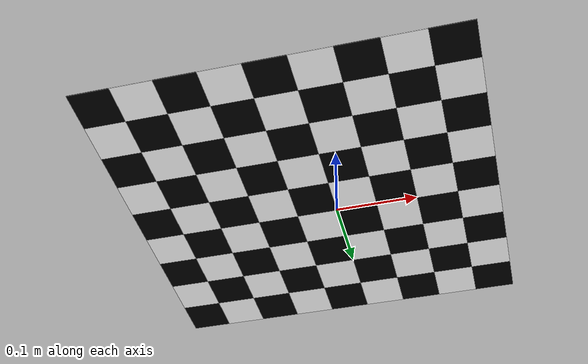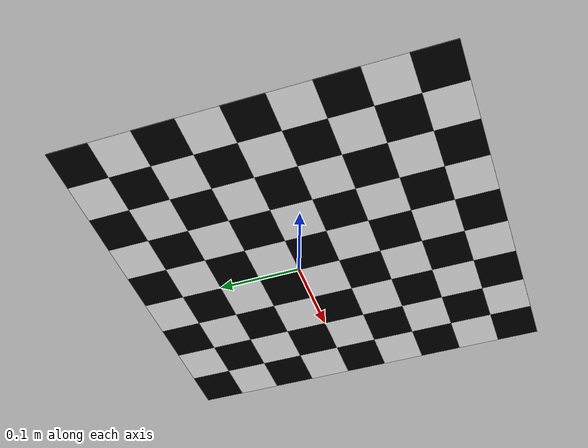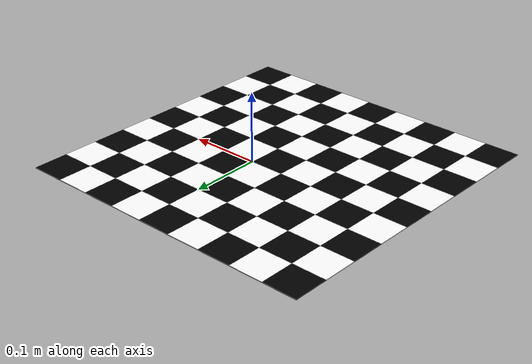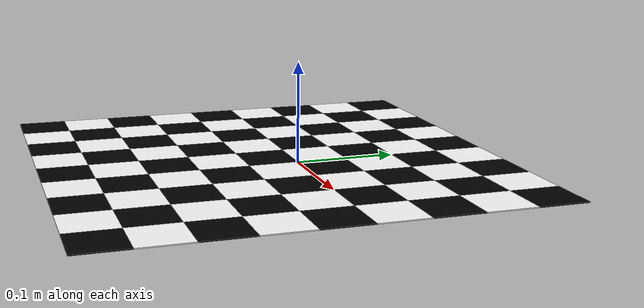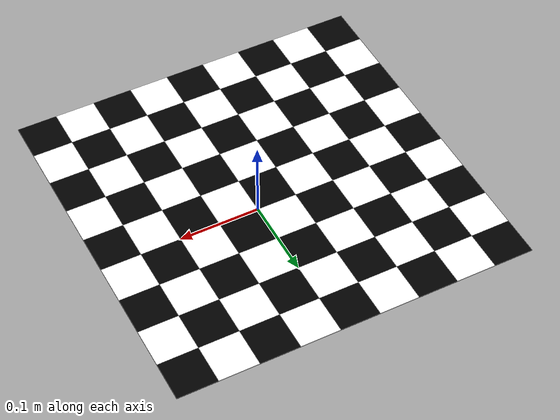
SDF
<?xml version='1.0'?>
<sdf version="1.4">
<model name="board5cm">
  <pose>0 0 0 0 0 0</pose>
  <static>false</static>
    <link name="checkerboard">
      <gravity>false</gravity>
      <kinematic>true</kinematic>
      <pose>-0.0 0.0 0.0 0.0 0.0 0.0</pose>
      <inertial>
        <mass>0.01</mass>
        <inertia> <!-- interias are tricky to compute -->
          <!-- http://answers.gazebosim.org/question/4372/the-inertia-matrix-explained/ -->
          <ixx>0.083</ixx>       <!-- for a box: ixx = 0.083 * mass * (y*y + z*z) -->
          <ixy>0.0</ixy>         <!-- for a box: ixy = 0 -->
          <ixz>0.0</ixz>         <!-- for a box: ixz = 0 -->
          <iyy>0.083</iyy>       <!-- for a box: iyy = 0.083 * mass * (x*x + z*z) -->
          <iyz>0.0</iyz>         <!-- for a box: iyz = 0 -->
          <izz>0.083</izz>       <!-- for a box: izz = 0.083 * mass * (x*x + y*y) -->
        </inertia>
      </inertial>
      <collision name="collision">
        <geometry>
          <box>
            <size>0.02 0.02 0.00001</size>
          </box>
        </geometry>
      </collision>

    <visual name="sqr11">
        <pose>-0.225 -0.225 0.0 0.0 0.0 0.0</pose>
        <geometry>
            <box>
            <size>0.05 0.05 0.001</size>
            </box>
        </geometry>
        <material>
            <ambient>0 0 0 1</ambient>
            <diffuse>0 0 0 1</diffuse>
            <specular>0.1 0.1 0.1 1</specular>
            <emissive>0 0 0 0</emissive>
        </material>
    </visual>

    <visual name="sqr12">
        <pose>-0.17500000000000002 -0.225 0.0 0.0 0.0 0.0</pose>
        <geometry>
            <box>
            <size>0.05 0.05 0.001</size>
            </box>
        </geometry>
        <material>
            <ambient>1 1 1 1</ambient>
            <diffuse>1 1 1 1</diffuse>
            <specular>0.1 0.1 0.1 1</specular>
            <emissive>0 0 0 0</emissive>
        </material>
    </visual>

    <visual name="sqr13">
        <pose>-0.125 -0.225 0.0 0.0 0.0 0.0</pose>
        <geometry>
            <box>
            <size>0.05 0.05 0.001</size>
            </box>
        </geometry>
        <material>
            <ambient>0 0 0 1</ambient>
            <diffuse>0 0 0 1</diffuse>
            <specular>0.1 0.1 0.1 1</specular>
            <emissive>0 0 0 0</emissive>
        </material>
    </visual>

    <visual name="sqr14">
        <pose>-0.07500000000000001 -0.225 0.0 0.0 0.0 0.0</pose>
        <geometry>
            <box>
            <size>0.05 0.05 0.001</size>
            </box>
        </geometry>
        <material>
            <ambient>1 1 1 1</ambient>
            <diffuse>1 1 1 1</diffuse>
            <specular>0.1 0.1 0.1 1</specular>
            <emissive>0 0 0 0</emissive>
        </material>
    </visual>

    <visual name="sqr15">
        <pose>-0.025 -0.225 0.0 0.0 0.0 0.0</pose>
        <geometry>
            <box>
            <size>0.05 0.05 0.001</size>
            </box>
        </geometry>
        <material>
            <ambient>0 0 0 1</ambient>
            <diffuse>0 0 0 1</diffuse>
            <specular>0.1 0.1 0.1 1</specular>
            <emissive>0 0 0 0</emissive>
        </material>
    </visual>

    <visual name="sqr16">
        <pose>0.025 -0.225 0.0 0.0 0.0 0.0</pose>
        <geometry>
            <box>
            <size>0.05 0.05 0.001</size>
            </box>
        </geometry>
        <material>
            <ambient>1 1 1 1</ambient>
            <diffuse>1 1 1 1</diffuse>
            <specular>0.1 0.1 0.1 1</specular>
            <emissive>0 0 0 0</emissive>
        </material>
    </visual>

    <visual name="sqr17">
        <pose>0.07500000000000001 -0.225 0.0 0.0 0.0 0.0</pose>
        <geometry>
            <box>
            <size>0.05 0.05 0.001</size>
            </box>
        </geometry>
        <material>
            <ambient>0 0 0 1</ambient>
            <diffuse>0 0 0 1</diffuse>
            <specular>0.1 0.1 0.1 1</specular>
            <emissive>0 0 0 0</emissive>
        </material>
    </visual>

    <visual name="sqr18">
        <pose>0.125 -0.225 0.0 0.0 0.0 0.0</pose>
        <geometry>
            <box>
            <size>0.05 0.05 0.001</size>
            </box>
        </geometry>
        <material>
            <ambient>1 1 1 1</ambient>
            <diffuse>1 1 1 1</diffuse>
            <specular>0.1 0.1 0.1 1</specular>
            <emissive>0 0 0 0</emissive>
        </material>
    </visual>

    <visual name="sqr19">
        <pose>0.17500000000000002 -0.225 0.0 0.0 0.0 0.0</pose>
        <geometry>
            <box>
            <size>0.05 0.05 0.001</size>
            </box>
        </geometry>
        <material>
            <ambient>0 0 0 1</ambient>
            <diffuse>0 0 0 1</diffuse>
            <specular>0.1 0.1 0.1 1</specular>
            <emissive>0 0 0 0</emissive>
        </material>
    </visual>

    <visual name="sqr21">
        <pose>-0.225 -0.17500000000000002 0.0 0.0 0.0 0.0</pose>
        <geometry>
            <box>
            <size>0.05 0.05 0.001</size>
            </box>
        </geometry>
        <material>
            <ambient>1 1 1 1</ambient>
            <diffuse>1 1 1 1</diffuse>
            <specular>0.1 0.1 0.1 1</specular>
            <emissive>0 0 0 0</emissive>
        </material>
    </visual>

    <visual name="sqr22">
        <pose>-0.17500000000000002 -0.17500000000000002 0.0 0.0 0.0 0.0</pose>
        <geometry>
            <box>
            <size>0.05 0.05 0.001</size>
            </box>
        </geometry>
        <material>
            <ambient>0 0 0 1</ambient>
            <diffuse>0 0 0 1</diffuse>
            <specular>0.1 0.1 0.1 1</specular>
            <emissive>0 0 0 0</emissive>
        </material>
    </visual>

    <visual name="sqr23">
        <pose>-0.125 -0.17500000000000002 0.0 0.0 0.0 0.0</pose>
        <geometry>
            <box>
            <size>0.05 0.05 0.001</size>
            </box>
        </geometry>
        <material>
            <ambient>1 1 1 1</ambient>
            <diffuse>1 1 1 1</diffuse>
            <specular>0.1 0.1 0.1 1</specular>
            <emissive>0 0 0 0</emissive>
        </material>
    </visual>

    <visual name="sqr24">
        <pose>-0.07500000000000001 -0.17500000000000002 0.0 0.0 0.0 0.0</pose>
        <geometry>
            <box>
            <size>0.05 0.05 0.001</size>
            </box>
        </geometry>
        <material>
            <ambient>0 0 0 1</ambient>
            <diffuse>0 0 0 1</diffuse>
            <specular>0.1 0.1 0.1 1</specular>
            <emissive>0 0 0 0</emissive>
        </material>
    </visual>

    <visual name="sqr25">
        <pose>-0.025 -0.17500000000000002 0.0 0.0 0.0 0.0</pose>
        <geometry>
            <box>
            <size>0.05 0.05 0.001</size>
            </box>
        </geometry>
        <material>
            <ambient>1 1 1 1</ambient>
            <diffuse>1 1 1 1</diffuse>
            <specular>0.1 0.1 0.1 1</specular>
            <emissive>0 0 0 0</emissive>
        </material>
    </visual>

    <visual name="sqr26">
        <pose>0.025 -0.17500000000000002 0.0 0.0 0.0 0.0</pose>
        <geometry>
            <box>
            <size>0.05 0.05 0.001</size>
            </box>
        </geometry>
        <material>
            <ambient>0 0 0 1</ambient>
            <diffuse>0 0 0 1</diffuse>
            <specular>0.1 0.1 0.1 1</specular>
            <emissive>0 0 0 0</emissive>
        </material>
    </visual>

    <visual name="sqr27">
        <pose>0.07500000000000001 -0.17500000000000002 0.0 0.0 0.0 0.0</pose>
        <geometry>
            <box>
            <size>0.05 0.05 0.001</size>
            </box>
        </geometry>
        <material>
            <ambient>1 1 1 1</ambient>
            <diffuse>1 1 1 1</diffuse>
            <specular>0.1 0.1 0.1 1</specular>
            <emissive>0 0 0 0</emissive>
        </material>
    </visual>

    <visual name="sqr28">
        <pose>0.125 -0.17500000000000002 0.0 0.0 0.0 0.0</pose>
        <geometry>
            <box>
            <size>0.05 0.05 0.001</size>
            </box>
        </geometry>
        <material>
            <ambient>0 0 0 1</ambient>
            <diffuse>0 0 0 1</diffuse>
            <specular>0.1 0.1 0.1 1</specular>
            <emissive>0 0 0 0</emissive>
        </material>
    </visual>

    <visual name="sqr29">
        <pose>0.17500000000000002 -0.17500000000000002 0.0 0.0 0.0 0.0</pose>
        <geometry>
            <box>
            <size>0.05 0.05 0.001</size>
            </box>
        </geometry>
        <material>
            <ambient>1 1 1 1</ambient>
            <diffuse>1 1 1 1</diffuse>
            <specular>0.1 0.1 0.1 1</specular>
            <emissive>0 0 0 0</emissive>
        </material>
    </visual>

    <visual name="sqr31">
        <pose>-0.225 -0.125 0.0 0.0 0.0 0.0</pose>
        <geometry>
            <box>
            <size>0.05 0.05 0.001</size>
            </box>
        </geometry>
        <material>
            <ambient>0 0 0 1</ambient>
            <diffuse>0 0 0 1</diffuse>
            <specular>0.1 0.1 0.1 1</specular>
            <emissive>0 0 0 0</emissive>
        </material>
    </visual>

    <visual name="sqr32">
        <pose>-0.17500000000000002 -0.125 0.0 0.0 0.0 0.0</pose>
        <geometry>
            <box>
            <size>0.05 0.05 0.001</size>
            </box>
        </geometry>
        <material>
            <ambient>1 1 1 1</ambient>
            <diffuse>1 1 1 1</diffuse>
            <specular>0.1 0.1 0.1 1</specular>
            <emissive>0 0 0 0</emissive>
        </material>
    </visual>

    <visual name="sqr33">
        <pose>-0.125 -0.125 0.0 0.0 0.0 0.0</pose>
        <geometry>
            <box>
            <size>0.05 0.05 0.001</size>
            </box>
        </geometry>
        <material>
            <ambient>0 0 0 1</ambient>
            <diffuse>0 0 0 1</diffuse>
            <specular>0.1 0.1 0.1 1</specular>
            <emissive>0 0 0 0</emissive>
        </material>
    </visual>

    <visual name="sqr34">
        <pose>-0.07500000000000001 -0.125 0.0 0.0 0.0 0.0</pose>
        <geometry>
            <box>
            <size>0.05 0.05 0.001</size>
            </box>
        </geometry>
        <material>
            <ambient>1 1 1 1</ambient>
            <diffuse>1 1 1 1</diffuse>
            <specular>0.1 0.1 0.1 1</specular>
            <emissive>0 0 0 0</emissive>
        </material>
    </visual>

    <visual name="sqr35">
        <pose>-0.025 -0.125 0.0 0.0 0.0 0.0</pose>
        <geometry>
            <box>
            <size>0.05 0.05 0.001</size>
            </box>
        </geometry>
        <material>
            <ambient>0 0 0 1</ambient>
            <diffuse>0 0 0 1</diffuse>
            <specular>0.1 0.1 0.1 1</specular>
            <emissive>0 0 0 0</emissive>
        </material>
    </visual>

    <visual name="sqr36">
        <pose>0.025 -0.125 0.0 0.0 0.0 0.0</pose>
        <geometry>
            <box>
            <size>0.05 0.05 0.001</size>
            </box>
        </geometry>
        <material>
            <ambient>1 1 1 1</ambient>
            <diffuse>1 1 1 1</diffuse>
            <specular>0.1 0.1 0.1 1</specular>
            <emissive>0 0 0 0</emissive>
        </material>
    </visual>

    <visual name="sqr37">
        <pose>0.07500000000000001 -0.125 0.0 0.0 0.0 0.0</pose>
        <geometry>
            <box>
            <size>0.05 0.05 0.001</size>
            </box>
        </geometry>
        <material>
            <ambient>0 0 0 1</ambient>
            <diffuse>0 0 0 1</diffuse>
            <specular>0.1 0.1 0.1 1</specular>
            <emissive>0 0 0 0</emissive>
        </material>
    </visual>

    <visual name="sqr38">
        <pose>0.125 -0.125 0.0 0.0 0.0 0.0</pose>
        <geometry>
            <box>
            <size>0.05 0.05 0.001</size>
            </box>
        </geometry>
        <material>
            <ambient>1 1 1 1</ambient>
            <diffuse>1 1 1 1</diffuse>
            <specular>0.1 0.1 0.1 1</specular>
            <emissive>0 0 0 0</emissive>
        </material>
    </visual>

    <visual name="sqr39">
        <pose>0.17500000000000002 -0.125 0.0 0.0 0.0 0.0</pose>
        <geometry>
            <box>
            <size>0.05 0.05 0.001</size>
            </box>
        </geometry>
        <material>
            <ambient>0 0 0 1</ambient>
            <diffuse>0 0 0 1</diffuse>
            <specular>0.1 0.1 0.1 1</specular>
            <emissive>0 0 0 0</emissive>
        </material>
    </visual>

    <visual name="sqr41">
        <pose>-0.225 -0.07500000000000001 0.0 0.0 0.0 0.0</pose>
        <geometry>
            <box>
            <size>0.05 0.05 0.001</size>
            </box>
        </geometry>
        <material>
            <ambient>1 1 1 1</ambient>
            <diffuse>1 1 1 1</diffuse>
            <specular>0.1 0.1 0.1 1</specular>
            <emissive>0 0 0 0</emissive>
        </material>
    </visual>

    <visual name="sqr42">
        <pose>-0.17500000000000002 -0.07500000000000001 0.0 0.0 0.0 0.0</pose>
        <geometry>
            <box>
            <size>0.05 0.05 0.001</size>
            </box>
        </geometry>
        <material>
            <ambient>0 0 0 1</ambient>
            <diffuse>0 0 0 1</diffuse>
            <specular>0.1 0.1 0.1 1</specular>
            <emissive>0 0 0 0</emissive>
        </material>
    </visual>

    <visual name="sqr43">
        <pose>-0.125 -0.07500000000000001 0.0 0.0 0.0 0.0</pose>
        <geometry>
            <box>
            <size>0.05 0.05 0.001</size>
            </box>
        </geometry>
        <material>
            <ambient>1 1 1 1</ambient>
            <diffuse>1 1 1 1</diffuse>
            <specular>0.1 0.1 0.1 1</specular>
            <emissive>0 0 0 0</emissive>
        </material>
    </visual>

    <visual name="sqr44">
        <pose>-0.07500000000000001 -0.07500000000000001 0.0 0.0 0.0 0.0</pose>
        <geometry>
            <box>
            <size>0.05 0.05 0.001</size>
            </box>
        </geometry>
        <material>
            <ambient>0 0 0 1</ambient>
            <diffuse>0 0 0 1</diffuse>
            <specular>0.1 0.1 0.1 1</specular>
            <emissive>0 0 0 0</emissive>
        </material>
    </visual>

    <visual name="sqr45">
        <pose>-0.025 -0.07500000000000001 0.0 0.0 0.0 0.0</pose>
        <geometry>
            <box>
            <size>0.05 0.05 0.001</size>
            </box>
        </geometry>
        <material>
            <ambient>1 1 1 1</ambient>
            <diffuse>1 1 1 1</diffuse>
            <specular>0.1 0.1 0.1 1</specular>
            <emissive>0 0 0 0</emissive>
        </material>
    </visual>

    <visual name="sqr46">
        <pose>0.025 -0.07500000000000001 0.0 0.0 0.0 0.0</pose>
        <geometry>
            <box>
            <size>0.05 0.05 0.001</size>
            </box>
        </geometry>
        <material>
            <ambient>0 0 0 1</ambient>
            <diffuse>0 0 0 1</diffuse>
            <specular>0.1 0.1 0.1 1</specular>
            <emissive>0 0 0 0</emissive>
        </material>
    </visual>

    <visual name="sqr47">
        <pose>0.07500000000000001 -0.07500000000000001 0.0 0.0 0.0 0.0</pose>
        <geometry>
            <box>
            <size>0.05 0.05 0.001</size>
            </box>
        </geometry>
        <material>
            <ambient>1 1 1 1</ambient>
            <diffuse>1 1 1 1</diffuse>
            <specular>0.1 0.1 0.1 1</specular>
            <emissive>0 0 0 0</emissive>
        </material>
    </visual>

    <visual name="sqr48">
        <pose>0.125 -0.07500000000000001 0.0 0.0 0.0 0.0</pose>
        <geometry>
            <box>
            <size>0.05 0.05 0.001</size>
            </box>
        </geometry>
        <material>
            <ambient>0 0 0 1</ambient>
            <diffuse>0 0 0 1</diffuse>
            <specular>0.1 0.1 0.1 1</specular>
            <emissive>0 0 0 0</emissive>
        </material>
    </visual>

    <visual name="sqr49">
        <pose>0.17500000000000002 -0.07500000000000001 0.0 0.0 0.0 0.0</pose>
        <geometry>
            <box>
            <size>0.05 0.05 0.001</size>
            </box>
        </geometry>
        <material>
            <ambient>1 1 1 1</ambient>
            <diffuse>1 1 1 1</diffuse>
            <specular>0.1 0.1 0.1 1</specular>
            <emissive>0 0 0 0</emissive>
        </material>
    </visual>

    <visual name="sqr51">
        <pose>-0.225 -0.025 0.0 0.0 0.0 0.0</pose>
        <geometry>
            <box>
            <size>0.05 0.05 0.001</size>
            </box>
        </geometry>
        <material>
            <ambient>0 0 0 1</ambient>
            <diffuse>0 0 0 1</diffuse>
            <specular>0.1 0.1 0.1 1</specular>
            <emissive>0 0 0 0</emissive>
        </material>
    </visual>

    <visual name="sqr52">
        <pose>-0.17500000000000002 -0.025 0.0 0.0 0.0 0.0</pose>
        <geometry>
            <box>
            <size>0.05 0.05 0.001</size>
            </box>
        </geometry>
        <material>
            <ambient>1 1 1 1</ambient>
            <diffuse>1 1 1 1</diffuse>
            <specular>0.1 0.1 0.1 1</specular>
            <emissive>0 0 0 0</emissive>
        </material>
    </visual>

    <visual name="sqr53">
        <pose>-0.125 -0.025 0.0 0.0 0.0 0.0</pose>
        <geometry>
            <box>
            <size>0.05 0.05 0.001</size>
            </box>
        </geometry>
        <material>
            <ambient>0 0 0 1</ambient>
            <diffuse>0 0 0 1</diffuse>
            <specular>0.1 0.1 0.1 1</specular>
            <emissive>0 0 0 0</emissive>
        </material>
    </visual>

    <visual name="sqr54">
        <pose>-0.07500000000000001 -0.025 0.0 0.0 0.0 0.0</pose>
        <geometry>
            <box>
            <size>0.05 0.05 0.001</size>
            </box>
        </geometry>
        <material>
            <ambient>1 1 1 1</ambient>
            <diffuse>1 1 1 1</diffuse>
            <specular>0.1 0.1 0.1 1</specular>
            <emissive>0 0 0 0</emissive>
        </material>
    </visual>

    <visual name="sqr55">
        <pose>-0.025 -0.025 0.0 0.0 0.0 0.0</pose>
        <geometry>
            <box>
            <size>0.05 0.05 0.001</size>
            </box>
        </geometry>
        <material>
            <ambient>0 0 0 1</ambient>
            <diffuse>0 0 0 1</diffuse>
            <specular>0.1 0.1 0.1 1</specular>
            <emissive>0 0 0 0</emissive>
        </material>
    </visual>

    <visual name="sqr56">
        <pose>0.025 -0.025 0.0 0.0 0.0 0.0</pose>
        <geometry>
            <box>
            <size>0.05 0.05 0.001</size>
            </box>
        </geometry>
        <material>
            <ambient>1 1 1 1</ambient>
            <diffuse>1 1 1 1</diffuse>
            <specular>0.1 0.1 0.1 1</specular>
            <emissive>0 0 0 0</emissive>
        </material>
    </visual>

    <visual name="sqr57">
        <pose>0.07500000000000001 -0.025 0.0 0.0 0.0 0.0</pose>
        <geometry>
            <box>
            <size>0.05 0.05 0.001</size>
            </box>
        </geometry>
        <material>
            <ambient>0 0 0 1</ambient>
            <diffuse>0 0 0 1</diffuse>
            <specular>0.1 0.1 0.1 1</specular>
            <emissive>0 0 0 0</emissive>
        </material>
    </visual>

    <visual name="sqr58">
        <pose>0.125 -0.025 0.0 0.0 0.0 0.0</pose>
        <geometry>
            <box>
            <size>0.05 0.05 0.001</size>
            </box>
        </geometry>
        <material>
            <ambient>1 1 1 1</ambient>
            <diffuse>1 1 1 1</diffuse>
            <specular>0.1 0.1 0.1 1</specular>
            <emissive>0 0 0 0</emissive>
        </material>
    </visual>

    <visual name="sqr59">
        <pose>0.17500000000000002 -0.025 0.0 0.0 0.0 0.0</pose>
        <geometry>
            <box>
            <size>0.05 0.05 0.001</size>
            </box>
        </geometry>
        <material>
            <ambient>0 0 0 1</ambient>
            <diffuse>0 0 0 1</diffuse>
            <specular>0.1 0.1 0.1 1</specular>
            <emissive>0 0 0 0</emissive>
        </material>
    </visual>

    <visual name="sqr61">
        <pose>-0.225 0.025 0.0 0.0 0.0 0.0</pose>
        <geometry>
            <box>
            <size>0.05 0.05 0.001</size>
            </box>
        </geometry>
        <material>
            <ambient>1 1 1 1</ambient>
            <diffuse>1 1 1 1</diffuse>
            <specular>0.1 0.1 0.1 1</specular>
            <emissive>0 0 0 0</emissive>
        </material>
    </visual>

    <visual name="sqr62">
        <pose>-0.17500000000000002 0.025 0.0 0.0 0.0 0.0</pose>
        <geometry>
            <box>
            <size>0.05 0.05 0.001</size>
            </box>
        </geometry>
        <material>
            <ambient>0 0 0 1</ambient>
            <diffuse>0 0 0 1</diffuse>
            <specular>0.1 0.1 0.1 1</specular>
            <emissive>0 0 0 0</emissive>
        </material>
    </visual>

    <visual name="sqr63">
        <pose>-0.125 0.025 0.0 0.0 0.0 0.0</pose>
        <geometry>
            <box>
            <size>0.05 0.05 0.001</size>
            </box>
        </geometry>
        <material>
            <ambient>1 1 1 1</ambient>
            <diffuse>1 1 1 1</diffuse>
            <specular>0.1 0.1 0.1 1</specular>
            <emissive>0 0 0 0</emissive>
        </material>
    </visual>

    <visual name="sqr64">
        <pose>-0.07500000000000001 0.025 0.0 0.0 0.0 0.0</pose>
        <geometry>
            <box>
            <size>0.05 0.05 0.001</size>
            </box>
        </geometry>
        <material>
            <ambient>0 0 0 1</ambient>
            <diffuse>0 0 0 1</diffuse>
            <specular>0.1 0.1 0.1 1</specular>
            <emissive>0 0 0 0</emissive>
        </material>
    </visual>

    <visual name="sqr65">
        <pose>-0.025 0.025 0.0 0.0 0.0 0.0</pose>
        <geometry>
            <box>
            <size>0.05 0.05 0.001</size>
            </box>
        </geometry>
        <material>
            <ambient>1 1 1 1</ambient>
            <diffuse>1 1 1 1</diffuse>
            <specular>0.1 0.1 0.1 1</specular>
            <emissive>0 0 0 0</emissive>
        </material>
    </visual>

    <visual name="sqr66">
        <pose>0.025 0.025 0.0 0.0 0.0 0.0</pose>
        <geometry>
            <box>
            <size>0.05 0.05 0.001</size>
            </box>
        </geometry>
        <material>
            <ambient>0 0 0 1</ambient>
            <diffuse>0 0 0 1</diffuse>
            <specular>0.1 0.1 0.1 1</specular>
            <emissive>0 0 0 0</emissive>
        </material>
    </visual>

    <visual name="sqr67">
        <pose>0.07500000000000001 0.025 0.0 0.0 0.0 0.0</pose>
        <geometry>
            <box>
            <size>0.05 0.05 0.001</size>
            </box>
        </geometry>
        <material>
            <ambient>1 1 1 1</ambient>
            <diffuse>1 1 1 1</diffuse>
            <specular>0.1 0.1 0.1 1</specular>
            <emissive>0 0 0 0</emissive>
        </material>
    </visual>

    <visual name="sqr68">
        <pose>0.125 0.025 0.0 0.0 0.0 0.0</pose>
        <geometry>
            <box>
            <size>0.05 0.05 0.001</size>
            </box>
        </geometry>
        <material>
            <ambient>0 0 0 1</ambient>
            <diffuse>0 0 0 1</diffuse>
            <specular>0.1 0.1 0.1 1</specular>
            <emissive>0 0 0 0</emissive>
        </material>
    </visual>

    <visual name="sqr69">
        <pose>0.17500000000000002 0.025 0.0 0.0 0.0 0.0</pose>
        <geometry>
            <box>
            <size>0.05 0.05 0.001</size>
            </box>
        </geometry>
        <material>
            <ambient>1 1 1 1</ambient>
            <diffuse>1 1 1 1</diffuse>
            <specular>0.1 0.1 0.1 1</specular>
            <emissive>0 0 0 0</emissive>
        </material>
    </visual>

    <visual name="sqr71">
        <pose>-0.225 0.07500000000000001 0.0 0.0 0.0 0.0</pose>
        <geometry>
            <box>
            <size>0.05 0.05 0.001</size>
            </box>
        </geometry>
        <material>
            <ambient>0 0 0 1</ambient>
            <diffuse>0 0 0 1</diffuse>
            <specular>0.1 0.1 0.1 1</specular>
            <emissive>0 0 0 0</emissive>
        </material>
    </visual>

    <visual name="sqr72">
        <pose>-0.17500000000000002 0.07500000000000001 0.0 0.0 0.0 0.0</pose>
        <geometry>
            <box>
            <size>0.05 0.05 0.001</size>
            </box>
        </geometry>
        <material>
            <ambient>1 1 1 1</ambient>
            <diffuse>1 1 1 1</diffuse>
            <specular>0.1 0.1 0.1 1</specular>
            <emissive>0 0 0 0</emissive>
        </material>
    </visual>

    <visual name="sqr73">
        <pose>-0.125 0.07500000000000001 0.0 0.0 0.0 0.0</pose>
        <geometry>
            <box>
            <size>0.05 0.05 0.001</size>
            </box>
        </geometry>
        <material>
            <ambient>0 0 0 1</ambient>
            <diffuse>0 0 0 1</diffuse>
            <specular>0.1 0.1 0.1 1</specular>
            <emissive>0 0 0 0</emissive>
        </material>
    </visual>

    <visual name="sqr74">
        <pose>-0.07500000000000001 0.07500000000000001 0.0 0.0 0.0 0.0</pose>
        <geometry>
            <box>
            <size>0.05 0.05 0.001</size>
            </box>
        </geometry>
        <material>
            <ambient>1 1 1 1</ambient>
            <diffuse>1 1 1 1</diffuse>
            <specular>0.1 0.1 0.1 1</specular>
            <emissive>0 0 0 0</emissive>
        </material>
    </visual>

    <visual name="sqr75">
        <pose>-0.025 0.07500000000000001 0.0 0.0 0.0 0.0</pose>
        <geometry>
            <box>
            <size>0.05 0.05 0.001</size>
            </box>
        </geometry>
        <material>
            <ambient>0 0 0 1</ambient>
            <diffuse>0 0 0 1</diffuse>
            <specular>0.1 0.1 0.1 1</specular>
            <emissive>0 0 0 0</emissive>
        </material>
    </visual>

    <visual name="sqr76">
        <pose>0.025 0.07500000000000001 0.0 0.0 0.0 0.0</pose>
        <geometry>
            <box>
            <size>0.05 0.05 0.001</size>
            </box>
        </geometry>
        <material>
            <ambient>1 1 1 1</ambient>
            <diffuse>1 1 1 1</diffuse>
            <specular>0.1 0.1 0.1 1</specular>
            <emissive>0 0 0 0</emissive>
        </material>
    </visual>

    <visual name="sqr77">
        <pose>0.07500000000000001 0.07500000000000001 0.0 0.0 0.0 0.0</pose>
        <geometry>
            <box>
            <size>0.05 0.05 0.001</size>
            </box>
        </geometry>
        <material>
            <ambient>0 0 0 1</ambient>
            <diffuse>0 0 0 1</diffuse>
            <specular>0.1 0.1 0.1 1</specular>
            <emissive>0 0 0 0</emissive>
        </material>
    </visual>

    <visual name="sqr78">
        <pose>0.125 0.07500000000000001 0.0 0.0 0.0 0.0</pose>
        <geometry>
            <box>
            <size>0.05 0.05 0.001</size>
            </box>
        </geometry>
        <material>
            <ambient>1 1 1 1</ambient>
            <diffuse>1 1 1 1</diffuse>
            <specular>0.1 0.1 0.1 1</specular>
            <emissive>0 0 0 0</emissive>
        </material>
    </visual>

    <visual name="sqr79">
        <pose>0.17500000000000002 0.07500000000000001 0.0 0.0 0.0 0.0</pose>
        <geometry>
            <box>
            <size>0.05 0.05 0.001</size>
            </box>
        </geometry>
        <material>
            <ambient>0 0 0 1</ambient>
            <diffuse>0 0 0 1</diffuse>
            <specular>0.1 0.1 0.1 1</specular>
            <emissive>0 0 0 0</emissive>
        </material>
    </visual>

    <visual name="sqr81">
        <pose>-0.225 0.125 0.0 0.0 0.0 0.0</pose>
        <geometry>
            <box>
            <size>0.05 0.05 0.001</size>
            </box>
        </geometry>
        <material>
            <ambient>1 1 1 1</ambient>
            <diffuse>1 1 1 1</diffuse>
            <specular>0.1 0.1 0.1 1</specular>
            <emissive>0 0 0 0</emissive>
        </material>
    </visual>

    <visual name="sqr82">
        <pose>-0.17500000000000002 0.125 0.0 0.0 0.0 0.0</pose>
        <geometry>
            <box>
            <size>0.05 0.05 0.001</size>
            </box>
        </geometry>
        <material>
            <ambient>0 0 0 1</ambient>
            <diffuse>0 0 0 1</diffuse>
            <specular>0.1 0.1 0.1 1</specular>
            <emissive>0 0 0 0</emissive>
        </material>
    </visual>

    <visual name="sqr83">
        <pose>-0.125 0.125 0.0 0.0 0.0 0.0</pose>
        <geometry>
            <box>
            <size>0.05 0.05 0.001</size>
            </box>
        </geometry>
        <material>
            <ambient>1 1 1 1</ambient>
            <diffuse>1 1 1 1</diffuse>
            <specular>0.1 0.1 0.1 1</specular>
            <emissive>0 0 0 0</emissive>
        </material>
    </visual>

    <visual name="sqr84">
        <pose>-0.07500000000000001 0.125 0.0 0.0 0.0 0.0</pose>
        <geometry>
            <box>
            <size>0.05 0.05 0.001</size>
            </box>
        </geometry>
        <material>
            <ambient>0 0 0 1</ambient>
            <diffuse>0 0 0 1</diffuse>
            <specular>0.1 0.1 0.1 1</specular>
            <emissive>0 0 0 0</emissive>
        </material>
    </visual>

    <visual name="sqr85">
        <pose>-0.025 0.125 0.0 0.0 0.0 0.0</pose>
        <geometry>
            <box>
            <size>0.05 0.05 0.001</size>
            </box>
        </geometry>
        <material>
            <ambient>1 1 1 1</ambient>
            <diffuse>1 1 1 1</diffuse>
            <specular>0.1 0.1 0.1 1</specular>
            <emissive>0 0 0 0</emissive>
        </material>
    </visual>

    <visual name="sqr86">
        <pose>0.025 0.125 0.0 0.0 0.0 0.0</pose>
        <geometry>
            <box>
            <size>0.05 0.05 0.001</size>
            </box>
        </geometry>
        <material>
            <ambient>0 0 0 1</ambient>
            <diffuse>0 0 0 1</diffuse>
            <specular>0.1 0.1 0.1 1</specular>
            <emissive>0 0 0 0</emissive>
        </material>
    </visual>

    <visual name="sqr87">
        <pose>0.07500000000000001 0.125 0.0 0.0 0.0 0.0</pose>
        <geometry>
            <box>
            <size>0.05 0.05 0.001</size>
            </box>
        </geometry>
        <material>
            <ambient>1 1 1 1</ambient>
            <diffuse>1 1 1 1</diffuse>
            <specular>0.1 0.1 0.1 1</specular>
            <emissive>0 0 0 0</emissive>
        </material>
    </visual>

    <visual name="sqr88">
        <pose>0.125 0.125 0.0 0.0 0.0 0.0</pose>
        <geometry>
            <box>
            <size>0.05 0.05 0.001</size>
            </box>
        </geometry>
        <material>
            <ambient>0 0 0 1</ambient>
            <diffuse>0 0 0 1</diffuse>
            <specular>0.1 0.1 0.1 1</specular>
            <emissive>0 0 0 0</emissive>
        </material>
    </visual>

    <visual name="sqr89">
        <pose>0.17500000000000002 0.125 0.0 0.0 0.0 0.0</pose>
        <geometry>
            <box>
            <size>0.05 0.05 0.001</size>
            </box>
        </geometry>
        <material>
            <ambient>1 1 1 1</ambient>
            <diffuse>1 1 1 1</diffuse>
            <specular>0.1 0.1 0.1 1</specular>
            <emissive>0 0 0 0</emissive>
        </material>
    </visual>

    <visual name="sqr91">
        <pose>-0.225 0.17500000000000002 0.0 0.0 0.0 0.0</pose>
        <geometry>
            <box>
            <size>0.05 0.05 0.001</size>
            </box>
        </geometry>
        <material>
            <ambient>0 0 0 1</ambient>
            <diffuse>0 0 0 1</diffuse>
            <specular>0.1 0.1 0.1 1</specular>
            <emissive>0 0 0 0</emissive>
        </material>
    </visual>

    <visual name="sqr92">
        <pose>-0.17500000000000002 0.17500000000000002 0.0 0.0 0.0 0.0</pose>
        <geometry>
            <box>
            <size>0.05 0.05 0.001</size>
            </box>
        </geometry>
        <material>
            <ambient>1 1 1 1</ambient>
            <diffuse>1 1 1 1</diffuse>
            <specular>0.1 0.1 0.1 1</specular>
            <emissive>0 0 0 0</emissive>
        </material>
    </visual>

    <visual name="sqr93">
        <pose>-0.125 0.17500000000000002 0.0 0.0 0.0 0.0</pose>
        <geometry>
            <box>
            <size>0.05 0.05 0.001</size>
            </box>
        </geometry>
        <material>
            <ambient>0 0 0 1</ambient>
            <diffuse>0 0 0 1</diffuse>
            <specular>0.1 0.1 0.1 1</specular>
            <emissive>0 0 0 0</emissive>
        </material>
    </visual>

    <visual name="sqr94">
        <pose>-0.07500000000000001 0.17500000000000002 0.0 0.0 0.0 0.0</pose>
        <geometry>
            <box>
            <size>0.05 0.05 0.001</size>
            </box>
        </geometry>
        <material>
            <ambient>1 1 1 1</ambient>
            <diffuse>1 1 1 1</diffuse>
            <specular>0.1 0.1 0.1 1</specular>
            <emissive>0 0 0 0</emissive>
        </material>
    </visual>

    <visual name="sqr95">
        <pose>-0.025 0.17500000000000002 0.0 0.0 0.0 0.0</pose>
        <geometry>
            <box>
            <size>0.05 0.05 0.001</size>
            </box>
        </geometry>
        <material>
            <ambient>0 0 0 1</ambient>
            <diffuse>0 0 0 1</diffuse>
            <specular>0.1 0.1 0.1 1</specular>
            <emissive>0 0 0 0</emissive>
        </material>
    </visual>

    <visual name="sqr96">
        <pose>0.025 0.17500000000000002 0.0 0.0 0.0 0.0</pose>
        <geometry>
            <box>
            <size>0.05 0.05 0.001</size>
            </box>
        </geometry>
        <material>
            <ambient>1 1 1 1</ambient>
            <diffuse>1 1 1 1</diffuse>
            <specular>0.1 0.1 0.1 1</specular>
            <emissive>0 0 0 0</emissive>
        </material>
    </visual>

    <visual name="sqr97">
        <pose>0.07500000000000001 0.17500000000000002 0.0 0.0 0.0 0.0</pose>
        <geometry>
            <box>
            <size>0.05 0.05 0.001</size>
            </box>
        </geometry>
        <material>
            <ambient>0 0 0 1</ambient>
            <diffuse>0 0 0 1</diffuse>
            <specular>0.1 0.1 0.1 1</specular>
            <emissive>0 0 0 0</emissive>
        </material>
    </visual>

    <visual name="sqr98">
        <pose>0.125 0.17500000000000002 0.0 0.0 0.0 0.0</pose>
        <geometry>
            <box>
            <size>0.05 0.05 0.001</size>
            </box>
        </geometry>
        <material>
            <ambient>1 1 1 1</ambient>
            <diffuse>1 1 1 1</diffuse>
            <specular>0.1 0.1 0.1 1</specular>
            <emissive>0 0 0 0</emissive>
        </material>
    </visual>

    <visual name="sqr99">
        <pose>0.17500000000000002 0.17500000000000002 0.0 0.0 0.0 0.0</pose>
        <geometry>
            <box>
            <size>0.05 0.05 0.001</size>
            </box>
        </geometry>
        <material>
            <ambient>0 0 0 1</ambient>
            <diffuse>0 0 0 1</diffuse>
            <specular>0.1 0.1 0.1 1</specular>
            <emissive>0 0 0 0</emissive>
        </material>
    </visual>

    </link>
  </model>
</sdf>
